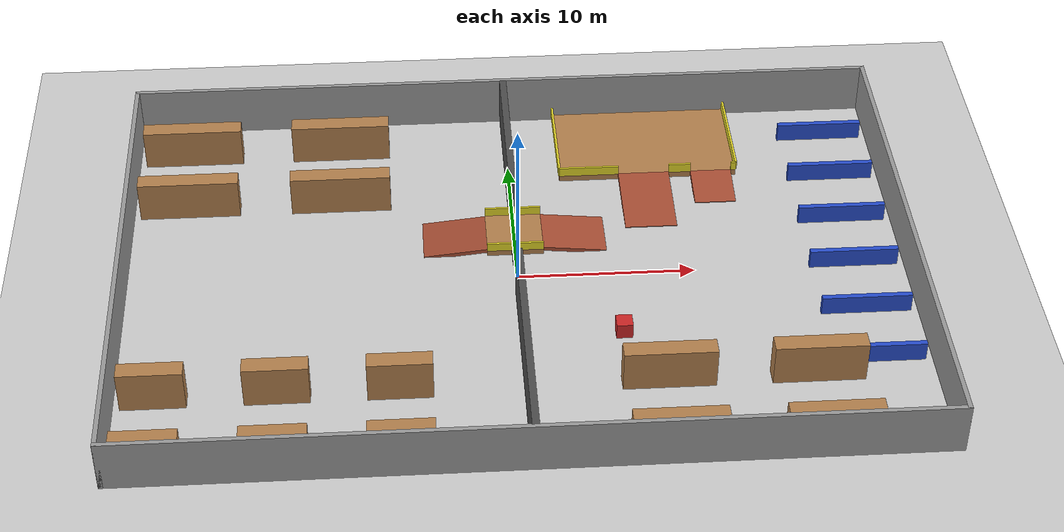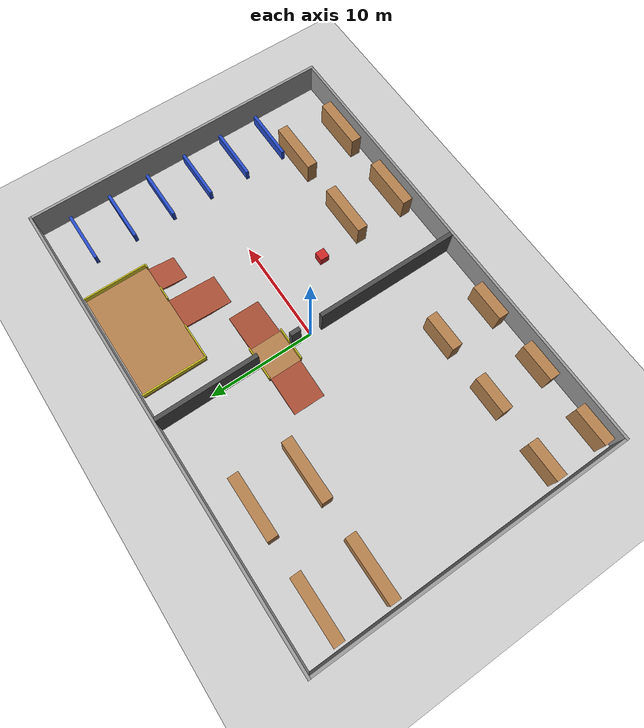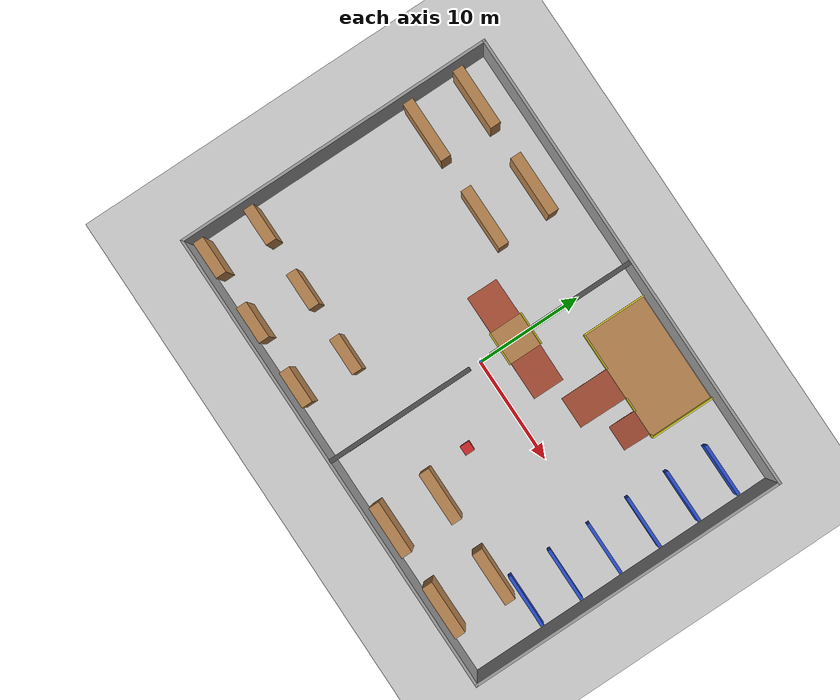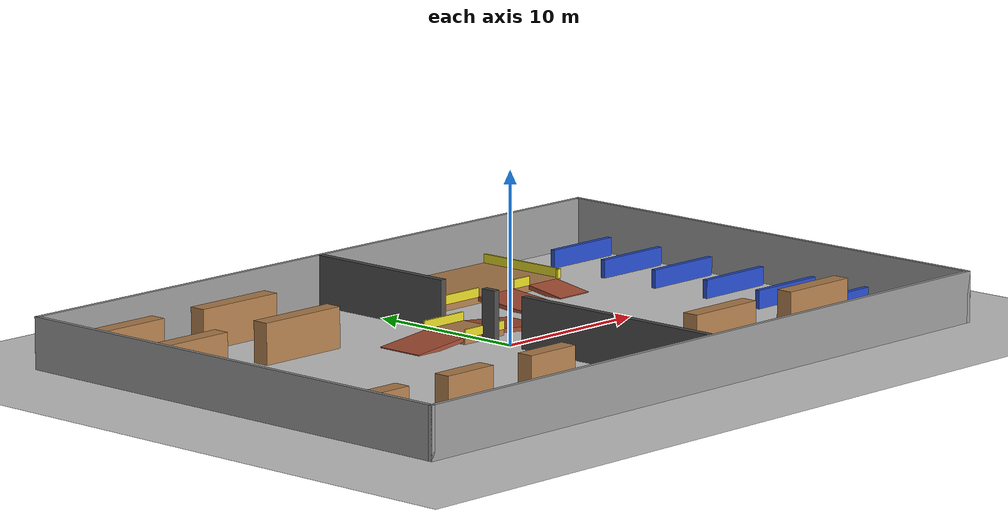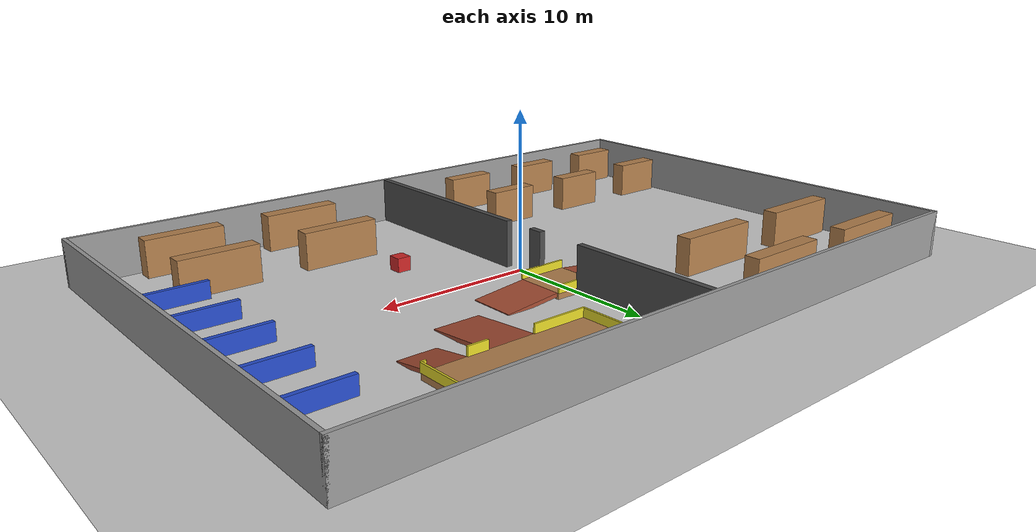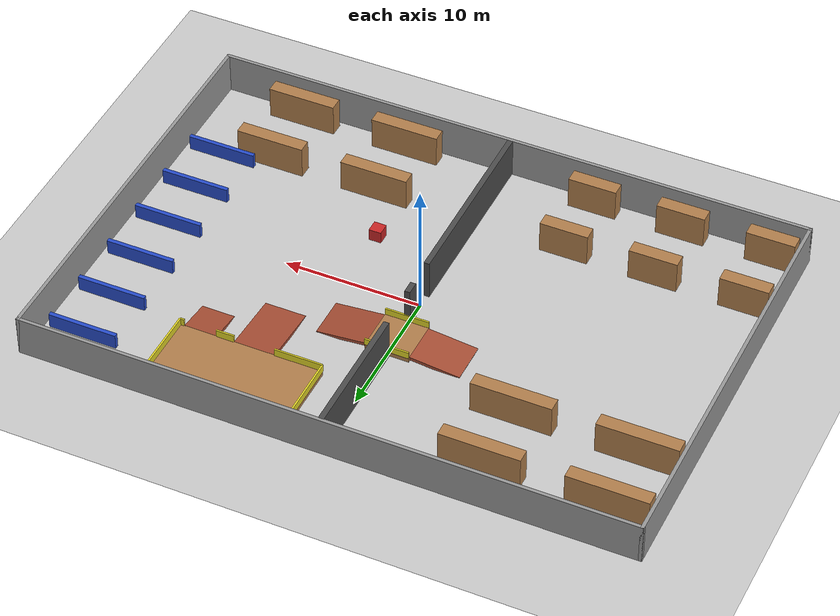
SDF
<sdf version="1.6">
 <world name="warehouse_multilevel">
  <physics name="default_physics" default="true" type="ode">
   <max_step_size>0.002</max_step_size>
   <real_time_factor>1.0</real_time_factor>
   <real_time_update_rate>500</real_time_update_rate>
   <ode>
    <solver><type>quick</type><iters>75</iters><sor>1.3</sor></solver>
    <constraints>
     <cfm>0.0</cfm>
     <erp>0.2</erp>
     <contact_max_correcting_vel>100.0</contact_max_correcting_vel>
     <contact_surface_layer>0.001</contact_surface_layer>
    </constraints>
   </ode>
  </physics>
  <gravity>0 0 -9.81</gravity>
  <scene>
   <ambient>0.5 0.5 0.5 1</ambient>
   <background>0.75 0.78 0.82 1</background>
   <shadows>false</shadows>
  </scene>
  <include><uri>model://sun</uri></include>
  <include><uri>model://ground_plane</uri></include>
  <plugin name="gazebo_ros_state" filename="libgazebo_ros_state.so">
   <ros><namespace>/gazebo</namespace></ros>
   <update_rate>25.0</update_rate>
  </plugin>
  <model name="wall_south">
   <static>true</static>
   <pose>0.0000 -15.0000 1.5000 0 0 0.000000</pose>
   <link name="link">
    <collision name="collision"><geometry><box><size>44.2500 0.2500 3.0000</size></box></geometry></collision>
    <visual name="visual">
     <geometry><box><size>44.2500 0.2500 3.0000</size></box></geometry>
     <material>
      <script><uri>file://media/materials/scripts/gazebo.material</uri><name>Gazebo/Grey</name></script>
     </material>
    </visual>
   </link>
  </model>
  <model name="wall_north">
   <static>true</static>
   <pose>0.0000 15.0000 1.5000 0 0 0.000000</pose>
   <link name="link">
    <collision name="collision"><geometry><box><size>44.2500 0.2500 3.0000</size></box></geometry></collision>
    <visual name="visual">
     <geometry><box><size>44.2500 0.2500 3.0000</size></box></geometry>
     <material>
      <script><uri>file://media/materials/scripts/gazebo.material</uri><name>Gazebo/Grey</name></script>
     </material>
    </visual>
   </link>
  </model>
  <model name="wall_west">
   <static>true</static>
   <pose>-22.0000 0.0000 1.5000 0 0 0.000000</pose>
   <link name="link">
    <collision name="collision"><geometry><box><size>0.2500 30.2500 3.0000</size></box></geometry></collision>
    <visual name="visual">
     <geometry><box><size>0.2500 30.2500 3.0000</size></box></geometry>
     <material>
      <script><uri>file://media/materials/scripts/gazebo.material</uri><name>Gazebo/Grey</name></script>
     </material>
    </visual>
   </link>
  </model>
  <model name="wall_east">
   <static>true</static>
   <pose>22.0000 0.0000 1.5000 0 0 0.000000</pose>
   <link name="link">
    <collision name="collision"><geometry><box><size>0.2500 30.2500 3.0000</size></box></geometry></collision>
    <visual name="visual">
     <geometry><box><size>0.2500 30.2500 3.0000</size></box></geometry>
     <material>
      <script><uri>file://media/materials/scripts/gazebo.material</uri><name>Gazebo/Grey</name></script>
     </material>
    </visual>
   </link>
  </model>
  <model name="heavy_rack_0_0">
   <static>true</static>
   <pose>-19.7500 -14.0000 1.2000 0 0 0.000000</pose>
   <link name="link">
    <collision name="collision"><geometry><box><size>3.5000 1.0000 2.4000</size></box></geometry></collision>
    <visual name="visual">
     <geometry><box><size>3.5000 1.0000 2.4000</size></box></geometry>
     <material>
      <script><uri>file://media/materials/scripts/gazebo.material</uri><name>Gazebo/Wood</name></script>
     </material>
    </visual>
   </link>
  </model>
  <model name="heavy_rack_0_1">
   <static>true</static>
   <pose>-13.2500 -14.0000 1.2000 0 0 0.000000</pose>
   <link name="link">
    <collision name="collision"><geometry><box><size>3.5000 1.0000 2.4000</size></box></geometry></collision>
    <visual name="visual">
     <geometry><box><size>3.5000 1.0000 2.4000</size></box></geometry>
     <material>
      <script><uri>file://media/materials/scripts/gazebo.material</uri><name>Gazebo/Wood</name></script>
     </material>
    </visual>
   </link>
  </model>
  <model name="heavy_rack_0_2">
   <static>true</static>
   <pose>-6.7500 -14.0000 1.2000 0 0 0.000000</pose>
   <link name="link">
    <collision name="collision"><geometry><box><size>3.5000 1.0000 2.4000</size></box></geometry></collision>
    <visual name="visual">
     <geometry><box><size>3.5000 1.0000 2.4000</size></box></geometry>
     <material>
      <script><uri>file://media/materials/scripts/gazebo.material</uri><name>Gazebo/Wood</name></script>
     </material>
    </visual>
   </link>
  </model>
  <model name="heavy_rack_1_0">
   <static>true</static>
   <pose>-19.7500 -9.0000 1.2000 0 0 0.000000</pose>
   <link name="link">
    <collision name="collision"><geometry><box><size>3.5000 1.0000 2.4000</size></box></geometry></collision>
    <visual name="visual">
     <geometry><box><size>3.5000 1.0000 2.4000</size></box></geometry>
     <material>
      <script><uri>file://media/materials/scripts/gazebo.material</uri><name>Gazebo/Wood</name></script>
     </material>
    </visual>
   </link>
  </model>
  <model name="heavy_rack_1_1">
   <static>true</static>
   <pose>-13.2500 -9.0000 1.2000 0 0 0.000000</pose>
   <link name="link">
    <collision name="collision"><geometry><box><size>3.5000 1.0000 2.4000</size></box></geometry></collision>
    <visual name="visual">
     <geometry><box><size>3.5000 1.0000 2.4000</size></box></geometry>
     <material>
      <script><uri>file://media/materials/scripts/gazebo.material</uri><name>Gazebo/Wood</name></script>
     </material>
    </visual>
   </link>
  </model>
  <model name="heavy_rack_1_2">
   <static>true</static>
   <pose>-6.7500 -9.0000 1.2000 0 0 0.000000</pose>
   <link name="link">
    <collision name="collision"><geometry><box><size>3.5000 1.0000 2.4000</size></box></geometry></collision>
    <visual name="visual">
     <geometry><box><size>3.5000 1.0000 2.4000</size></box></geometry>
     <material>
      <script><uri>file://media/materials/scripts/gazebo.material</uri><name>Gazebo/Wood</name></script>
     </material>
    </visual>
   </link>
  </model>
  <model name="general_rack_0_0">
   <static>true</static>
   <pose>-18.6250 7.0000 1.2000 0 0 0.000000</pose>
   <link name="link">
    <collision name="collision"><geometry><box><size>5.7500 1.0000 2.4000</size></box></geometry></collision>
    <visual name="visual">
     <geometry><box><size>5.7500 1.0000 2.4000</size></box></geometry>
     <material>
      <script><uri>file://media/materials/scripts/gazebo.material</uri><name>Gazebo/Wood</name></script>
     </material>
    </visual>
   </link>
  </model>
  <model name="general_rack_0_1">
   <static>true</static>
   <pose>-9.8750 7.0000 1.2000 0 0 0.000000</pose>
   <link name="link">
    <collision name="collision"><geometry><box><size>5.7500 1.0000 2.4000</size></box></geometry></collision>
    <visual name="visual">
     <geometry><box><size>5.7500 1.0000 2.4000</size></box></geometry>
     <material>
      <script><uri>file://media/materials/scripts/gazebo.material</uri><name>Gazebo/Wood</name></script>
     </material>
    </visual>
   </link>
  </model>
  <model name="general_rack_1_0">
   <static>true</static>
   <pose>-18.6250 12.0000 1.2000 0 0 0.000000</pose>
   <link name="link">
    <collision name="collision"><geometry><box><size>5.7500 1.0000 2.4000</size></box></geometry></collision>
    <visual name="visual">
     <geometry><box><size>5.7500 1.0000 2.4000</size></box></geometry>
     <material>
      <script><uri>file://media/materials/scripts/gazebo.material</uri><name>Gazebo/Wood</name></script>
     </material>
    </visual>
   </link>
  </model>
  <model name="general_rack_1_1">
   <static>true</static>
   <pose>-9.8750 12.0000 1.2000 0 0 0.000000</pose>
   <link name="link">
    <collision name="collision"><geometry><box><size>5.7500 1.0000 2.4000</size></box></geometry></collision>
    <visual name="visual">
     <geometry><box><size>5.7500 1.0000 2.4000</size></box></geometry>
     <material>
      <script><uri>file://media/materials/scripts/gazebo.material</uri><name>Gazebo/Wood</name></script>
     </material>
    </visual>
   </link>
  </model>
  <model name="buffer_rack_0_0">
   <static>true</static>
   <pose>7.5000 -14.0000 1.2000 0 0 0.000000</pose>
   <link name="link">
    <collision name="collision"><geometry><box><size>5.0000 1.0000 2.4000</size></box></geometry></collision>
    <visual name="visual">
     <geometry><box><size>5.0000 1.0000 2.4000</size></box></geometry>
     <material>
      <script><uri>file://media/materials/scripts/gazebo.material</uri><name>Gazebo/Wood</name></script>
     </material>
    </visual>
   </link>
  </model>
  <model name="buffer_rack_0_1">
   <static>true</static>
   <pose>15.5000 -14.0000 1.2000 0 0 0.000000</pose>
   <link name="link">
    <collision name="collision"><geometry><box><size>5.0000 1.0000 2.4000</size></box></geometry></collision>
    <visual name="visual">
     <geometry><box><size>5.0000 1.0000 2.4000</size></box></geometry>
     <material>
      <script><uri>file://media/materials/scripts/gazebo.material</uri><name>Gazebo/Wood</name></script>
     </material>
    </visual>
   </link>
  </model>
  <model name="buffer_rack_1_0">
   <static>true</static>
   <pose>7.5000 -9.0000 1.2000 0 0 0.000000</pose>
   <link name="link">
    <collision name="collision"><geometry><box><size>5.0000 1.0000 2.4000</size></box></geometry></collision>
    <visual name="visual">
     <geometry><box><size>5.0000 1.0000 2.4000</size></box></geometry>
     <material>
      <script><uri>file://media/materials/scripts/gazebo.material</uri><name>Gazebo/Wood</name></script>
     </material>
    </visual>
   </link>
  </model>
  <model name="buffer_rack_1_1">
   <static>true</static>
   <pose>15.5000 -9.0000 1.2000 0 0 0.000000</pose>
   <link name="link">
    <collision name="collision"><geometry><box><size>5.0000 1.0000 2.4000</size></box></geometry></collision>
    <visual name="visual">
     <geometry><box><size>5.0000 1.0000 2.4000</size></box></geometry>
     <material>
      <script><uri>file://media/materials/scripts/gazebo.material</uri><name>Gazebo/Wood</name></script>
     </material>
    </visual>
   </link>
  </model>
  <model name="firewall_south">
   <static>true</static>
   <pose>0.0000 -7.9750 1.5000 0 0 0.000000</pose>
   <link name="link">
    <collision name="collision"><geometry><box><size>0.4000 13.8500 3.0000</size></box></geometry></collision>
    <visual name="visual">
     <geometry><box><size>0.4000 13.8500 3.0000</size></box></geometry>
     <material>
      <script><uri>file://media/materials/scripts/gazebo.material</uri><name>Gazebo/DarkGrey</name></script>
     </material>
    </visual>
   </link>
  </model>
  <model name="firewall_mid">
   <static>true</static>
   <pose>0.0000 1.5250 1.5000 0 0 0.000000</pose>
   <link name="link">
    <collision name="collision"><geometry><box><size>0.4000 0.9500 3.0000</size></box></geometry></collision>
    <visual name="visual">
     <geometry><box><size>0.4000 0.9500 3.0000</size></box></geometry>
     <material>
      <script><uri>file://media/materials/scripts/gazebo.material</uri><name>Gazebo/DarkGrey</name></script>
     </material>
    </visual>
   </link>
  </model>
  <model name="firewall_north">
   <static>true</static>
   <pose>0.0000 10.0500 1.5000 0 0 0.000000</pose>
   <link name="link">
    <collision name="collision"><geometry><box><size>0.4000 9.7000 3.0000</size></box></geometry></collision>
    <visual name="visual">
     <geometry><box><size>0.4000 9.7000 3.0000</size></box></geometry>
     <material>
      <script><uri>file://media/materials/scripts/gazebo.material</uri><name>Gazebo/DarkGrey</name></script>
     </material>
    </visual>
   </link>
  </model>
  <model name="hump_rail_north">
   <static>true</static>
   <pose>0.0000 5.2000 0.6300 0 0 0.000000</pose>
   <link name="link">
    <collision name="collision"><geometry><box><size>3.2000 0.1200 0.5000</size></box></geometry></collision>
    <visual name="visual">
     <geometry><box><size>3.2000 0.1200 0.5000</size></box></geometry>
     <material>
      <script><uri>file://media/materials/scripts/gazebo.material</uri><name>Gazebo/Yellow</name></script>
     </material>
    </visual>
   </link>
  </model>
  <model name="hump_rail_south">
   <static>true</static>
   <pose>0.0000 2.0000 0.6300 0 0 0.000000</pose>
   <link name="link">
    <collision name="collision"><geometry><box><size>3.2000 0.1200 0.5000</size></box></geometry></collision>
    <visual name="visual">
     <geometry><box><size>3.2000 0.1200 0.5000</size></box></geometry>
     <material>
      <script><uri>file://media/materials/scripts/gazebo.material</uri><name>Gazebo/Yellow</name></script>
     </material>
    </visual>
   </link>
  </model>
  <model name="mezz_rail_east">
   <static>true</static>
   <pose>13.5000 11.7000 0.6750 0 0 0.000000</pose>
   <link name="link">
    <collision name="collision"><geometry><box><size>0.1200 6.1000 0.5500</size></box></geometry></collision>
    <visual name="visual">
     <geometry><box><size>0.1200 6.1000 0.5500</size></box></geometry>
     <material>
      <script><uri>file://media/materials/scripts/gazebo.material</uri><name>Gazebo/Yellow</name></script>
     </material>
    </visual>
   </link>
  </model>
  <model name="mezz_rail_west">
   <static>true</static>
   <pose>3.0000 11.7000 0.6750 0 0 0.000000</pose>
   <link name="link">
    <collision name="collision"><geometry><box><size>0.1200 6.1000 0.5500</size></box></geometry></collision>
    <visual name="visual">
     <geometry><box><size>0.1200 6.1000 0.5500</size></box></geometry>
     <material>
      <script><uri>file://media/materials/scripts/gazebo.material</uri><name>Gazebo/Yellow</name></script>
     </material>
    </visual>
   </link>
  </model>
  <model name="mezz_rail_south_a">
   <static>true</static>
   <pose>4.7500 8.6500 0.6750 0 0 0.000000</pose>
   <link name="link">
    <collision name="collision"><geometry><box><size>3.5000 0.1200 0.5500</size></box></geometry></collision>
    <visual name="visual">
     <geometry><box><size>3.5000 0.1200 0.5500</size></box></geometry>
     <material>
      <script><uri>file://media/materials/scripts/gazebo.material</uri><name>Gazebo/Yellow</name></script>
     </material>
    </visual>
   </link>
  </model>
  <model name="mezz_rail_south_b">
   <static>true</static>
   <pose>10.1500 8.6500 0.6750 0 0 0.000000</pose>
   <link name="link">
    <collision name="collision"><geometry><box><size>1.3000 0.1200 0.5500</size></box></geometry></collision>
    <visual name="visual">
     <geometry><box><size>1.3000 0.1200 0.5500</size></box></geometry>
     <material>
      <script><uri>file://media/materials/scripts/gazebo.material</uri><name>Gazebo/Yellow</name></script>
     </material>
    </visual>
   </link>
  </model>
  <model name="mezz_rail_south_c">
   <static>true</static>
   <pose>13.3500 8.6500 0.6750 0 0 0.000000</pose>
   <link name="link">
    <collision name="collision"><geometry><box><size>0.3000 0.1200 0.5500</size></box></geometry></collision>
    <visual name="visual">
     <geometry><box><size>0.3000 0.1200 0.5500</size></box></geometry>
     <material>
      <script><uri>file://media/materials/scripts/gazebo.material</uri><name>Gazebo/Yellow</name></script>
     </material>
    </visual>
   </link>
  </model>
  <model name="packing_divider_1">
   <static>true</static>
   <pose>19.0000 -8.0000 0.5500 0 0 0.000000</pose>
   <link name="link">
    <collision name="collision"><geometry><box><size>5.0000 0.3000 1.1000</size></box></geometry></collision>
    <visual name="visual">
     <geometry><box><size>5.0000 0.3000 1.1000</size></box></geometry>
     <material>
      <script><uri>file://media/materials/scripts/gazebo.material</uri><name>Gazebo/Blue</name></script>
     </material>
    </visual>
   </link>
  </model>
  <model name="packing_divider_2">
   <static>true</static>
   <pose>19.0000 -4.0000 0.5500 0 0 0.000000</pose>
   <link name="link">
    <collision name="collision"><geometry><box><size>5.0000 0.3000 1.1000</size></box></geometry></collision>
    <visual name="visual">
     <geometry><box><size>5.0000 0.3000 1.1000</size></box></geometry>
     <material>
      <script><uri>file://media/materials/scripts/gazebo.material</uri><name>Gazebo/Blue</name></script>
     </material>
    </visual>
   </link>
  </model>
  <model name="packing_divider_3">
   <static>true</static>
   <pose>19.0000 0.0000 0.5500 0 0 0.000000</pose>
   <link name="link">
    <collision name="collision"><geometry><box><size>5.0000 0.3000 1.1000</size></box></geometry></collision>
    <visual name="visual">
     <geometry><box><size>5.0000 0.3000 1.1000</size></box></geometry>
     <material>
      <script><uri>file://media/materials/scripts/gazebo.material</uri><name>Gazebo/Blue</name></script>
     </material>
    </visual>
   </link>
  </model>
  <model name="packing_divider_4">
   <static>true</static>
   <pose>19.0000 4.0000 0.5500 0 0 0.000000</pose>
   <link name="link">
    <collision name="collision"><geometry><box><size>5.0000 0.3000 1.1000</size></box></geometry></collision>
    <visual name="visual">
     <geometry><box><size>5.0000 0.3000 1.1000</size></box></geometry>
     <material>
      <script><uri>file://media/materials/scripts/gazebo.material</uri><name>Gazebo/Blue</name></script>
     </material>
    </visual>
   </link>
  </model>
  <model name="packing_divider_5">
   <static>true</static>
   <pose>19.0000 8.0000 0.5500 0 0 0.000000</pose>
   <link name="link">
    <collision name="collision"><geometry><box><size>5.0000 0.3000 1.1000</size></box></geometry></collision>
    <visual name="visual">
     <geometry><box><size>5.0000 0.3000 1.1000</size></box></geometry>
     <material>
      <script><uri>file://media/materials/scripts/gazebo.material</uri><name>Gazebo/Blue</name></script>
     </material>
    </visual>
   </link>
  </model>
  <model name="packing_divider_6">
   <static>true</static>
   <pose>19.0000 12.0000 0.5500 0 0 0.000000</pose>
   <link name="link">
    <collision name="collision"><geometry><box><size>5.0000 0.3000 1.1000</size></box></geometry></collision>
    <visual name="visual">
     <geometry><box><size>5.0000 0.3000 1.1000</size></box></geometry>
     <material>
      <script><uri>file://media/materials/scripts/gazebo.material</uri><name>Gazebo/Blue</name></script>
     </material>
    </visual>
   </link>
  </model>
  <model name="hump_deck">
   <static>true</static>
   <pose>0.0000 3.6000 0.1900 0 0 0.000000</pose>
   <link name="link">
    <collision name="collision"><geometry><box><size>3.2000 3.2000 0.3800</size></box></geometry></collision>
    <visual name="visual">
     <geometry><box><size>3.2000 3.2000 0.3800</size></box></geometry>
     <material>
      <script><uri>file://media/materials/scripts/gazebo.material</uri><name>Gazebo/WoodPallet</name></script>
     </material>
    </visual>
   </link>
  </model>
  <model name="mezzanine_deck">
   <static>true</static>
   <pose>8.2500 11.7000 0.2000 0 0 0.000000</pose>
   <link name="link">
    <collision name="collision"><geometry><box><size>10.5000 6.1000 0.4000</size></box></geometry></collision>
    <visual name="visual">
     <geometry><box><size>10.5000 6.1000 0.4000</size></box></geometry>
     <material>
      <script><uri>file://media/materials/scripts/gazebo.material</uri><name>Gazebo/WoodPallet</name></script>
     </material>
    </visual>
   </link>
  </model>
  <model name="hump_ramp_west">
   <static>true</static>
   <pose>-3.3975 3.6000 0.0707 0.000000 -0.104589 0.000000</pose>
   <link name="link">
    <collision name="collision">
     <geometry><box><size>3.6399 3.0000 0.2400</size></box></geometry>
     <surface><friction><ode><mu>1.2</mu><mu2>1.0</mu2></ode></friction></surface>
    </collision>
    <visual name="visual">
     <geometry><box><size>3.6399 3.0000 0.2400</size></box></geometry>
     <material>
      <script><uri>file://media/materials/scripts/gazebo.material</uri><name>Gazebo/Bricks</name></script>
     </material>
    </visual>
   </link>
  </model>
  <model name="hump_ramp_east">
   <static>true</static>
   <pose>3.3975 3.6000 0.0707 0.000000 0.104589 0.000000</pose>
   <link name="link">
    <collision name="collision">
     <geometry><box><size>3.6399 3.0000 0.2400</size></box></geometry>
     <surface><friction><ode><mu>1.2</mu><mu2>1.0</mu2></ode></friction></surface>
    </collision>
    <visual name="visual">
     <geometry><box><size>3.6399 3.0000 0.2400</size></box></geometry>
     <material>
      <script><uri>file://media/materials/scripts/gazebo.material</uri><name>Gazebo/Bricks</name></script>
     </material>
    </visual>
   </link>
  </model>
  <model name="mezz_ramp_gentle">
   <static>true</static>
   <pose>8.0000 6.3755 0.0805 0.000000 -0.087305 1.570796</pose>
   <link name="link">
    <collision name="collision">
     <geometry><box><size>4.5875 3.0000 0.2400</size></box></geometry>
     <surface><friction><ode><mu>1.2</mu><mu2>1.0</mu2></ode></friction></surface>
    </collision>
    <visual name="visual">
     <geometry><box><size>4.5875 3.0000 0.2400</size></box></geometry>
     <material>
      <script><uri>file://media/materials/scripts/gazebo.material</uri><name>Gazebo/Bricks</name></script>
     </material>
    </visual>
   </link>
  </model>
  <model name="mezz_ramp_steep">
   <static>true</static>
   <pose>12.0000 7.4037 0.0815 0.000000 -0.156805 1.570796</pose>
   <link name="link">
    <collision name="collision">
     <geometry><box><size>2.5614 2.4000 0.2400</size></box></geometry>
     <surface><friction><ode><mu>1.2</mu><mu2>1.0</mu2></ode></friction></surface>
    </collision>
    <visual name="visual">
     <geometry><box><size>2.5614 2.4000 0.2400</size></box></geometry>
     <material>
      <script><uri>file://media/materials/scripts/gazebo.material</uri><name>Gazebo/Bricks</name></script>
     </material>
    </visual>
   </link>
  </model>
  <model name="thirdparty_1">
   <pose>5.5000 -5.0000 0.4500 0 0 0</pose>
   <link name="link">
    <inertial>
     <mass>40.00</mass>
     <inertia><ixx>2.7000</ixx><ixy>0</ixy><ixz>0</ixz><iyy>2.7000</iyy><iyz>0</iyz><izz>4.0500</izz></inertia>
    </inertial>
    <collision name="collision"><geometry><box><size>0.900 0.900 0.900</size></box></geometry></collision>
    <visual name="visual">
     <geometry><box><size>0.900 0.900 0.900</size></box></geometry>
     <material>
      <script><uri>file://media/materials/scripts/gazebo.material</uri><name>Gazebo/Red</name></script>
     </material>
    </visual>
   </link>
   <plugin name="thirdparty_1_move" filename="libgazebo_ros_planar_move.so">
    <ros>
     <namespace>/obstacles/thirdparty_1</namespace>
     <remapping>cmd_vel:=cmd_vel</remapping>
     <remapping>odom:=odom</remapping>
    </ros>
    <update_rate>50</update_rate>
    <publish_rate>10</publish_rate>
    <publish_odom>true</publish_odom>
    <publish_odom_tf>false</publish_odom_tf>
    <odometry_frame>obstacles/thirdparty_1/odom</odometry_frame>
    <robot_base_frame>obstacles/thirdparty_1/base_link</robot_base_frame>
    <covariance_x>0.0001</covariance_x>
    <covariance_y>0.0001</covariance_y>
    <covariance_yaw>0.01</covariance_yaw>
   </plugin>
  </model>
 </world>
</sdf>
